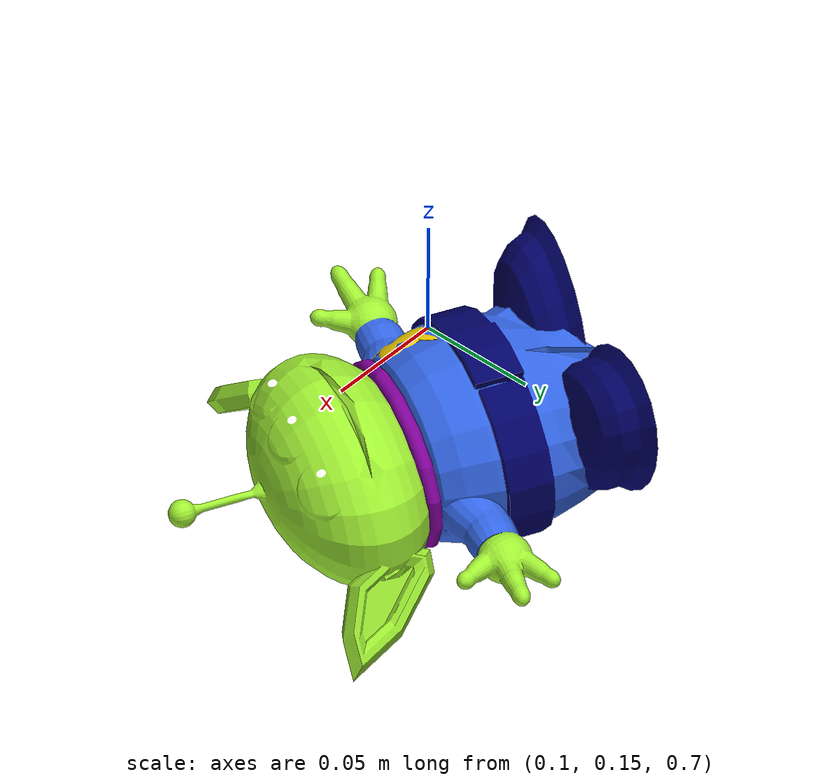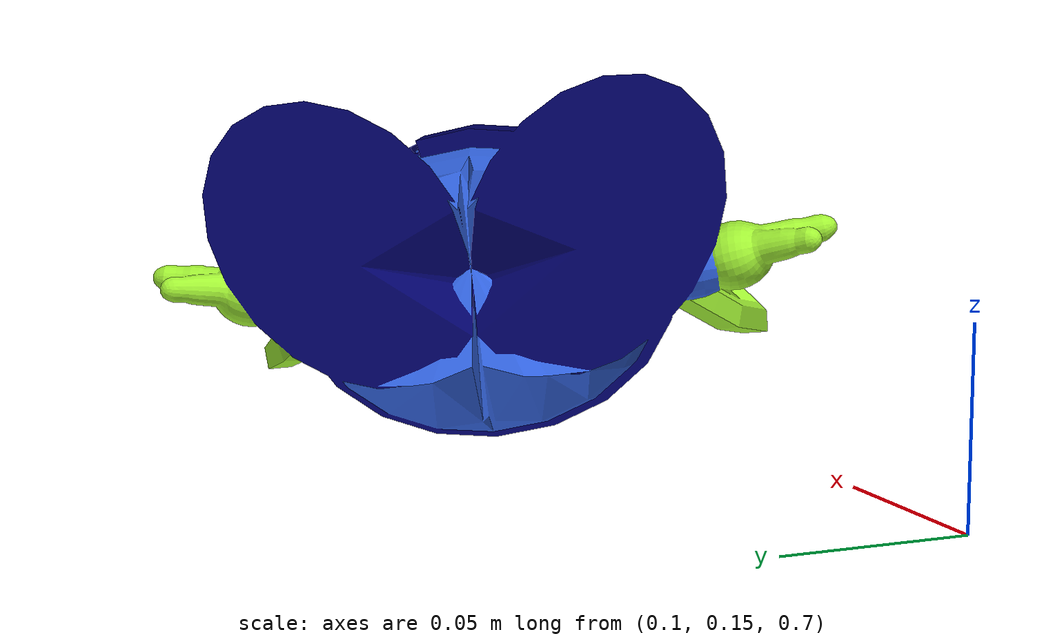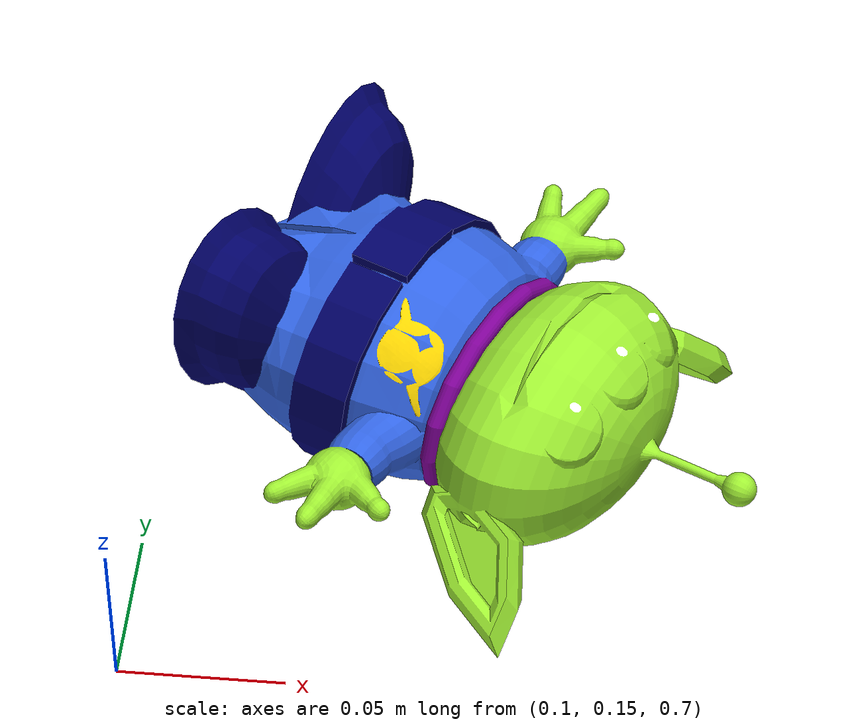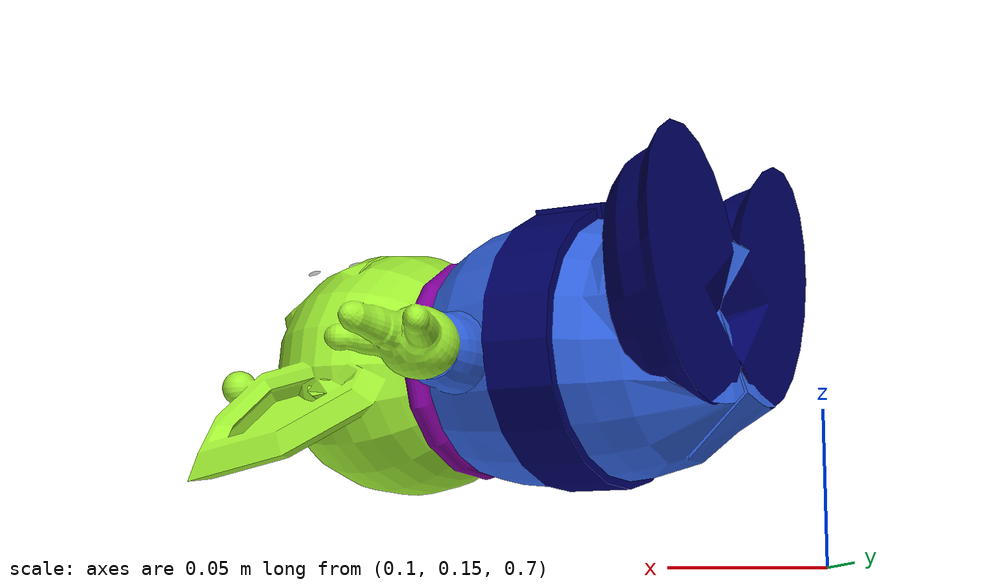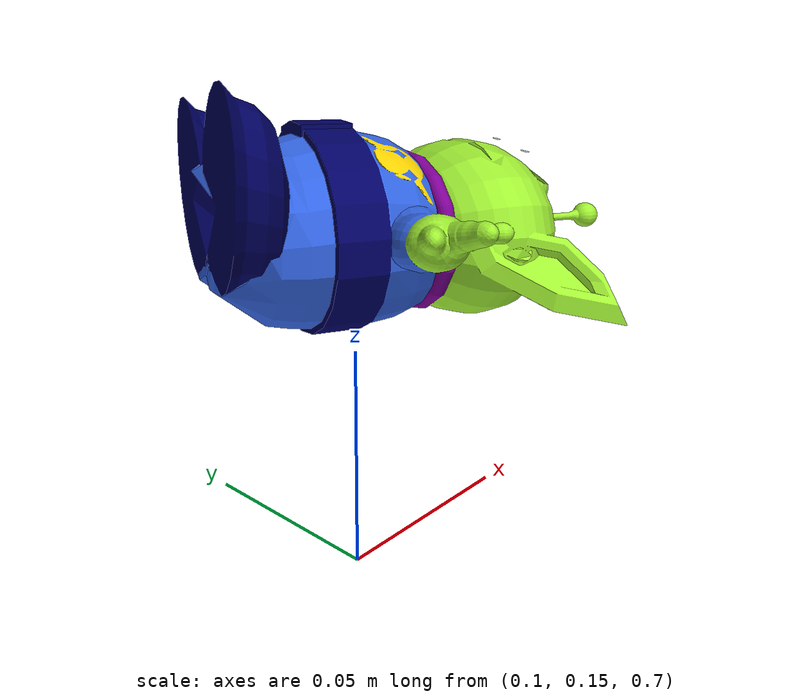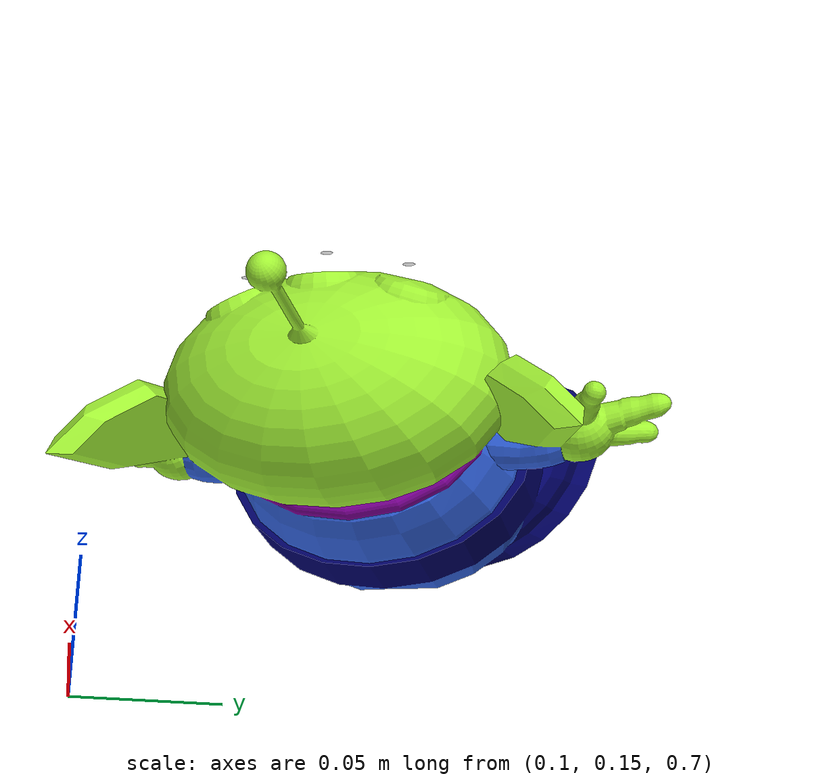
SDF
<?xml version='1.0'?>
<sdf version='1.6'>
  <model name='alien_model'>
    <pose>0.136858 0.259445 0.755916 0.000002 -0.087170 -2.013042</pose>
    <static>false</static>

    <link name='link'>
      <inertial>
        <pose>0 0.045 0.001 0 0 0</pose>
        <mass>0.03</mass>
        <inertia>
          <ixx>0.00055575</ixx>
          <ixy>0</ixy>
          <ixz>0</ixz>
          <iyy>0.00055575</iyy>
          <iyz>0</iyz>
          <izz>0.0001755</izz>
        </inertia>
      </inertial>

      <collision name='collision'>
        <pose>0 0 0 0 0 0</pose>
        <geometry>
          <mesh>
            <uri>/home/monica/ros2_pelota/src/xolobot_arm/models/meshes/alien.dae</uri>
            <scale>0.008 0.008 0.008</scale>
          </mesh>
        </geometry>
        <surface>
          <contact>
              <kp>1000</kp>
              <kd>100</kd>
              <min_depth>0.001</min_depth>
              <max_vel>0.1</max_vel>
          </contact>
          <friction>
            <ode>
              <mu>1.0</mu>
              <mu2>1.0</mu2>
            </ode>
          </friction>
        </surface>
        <max_contacts>10</max_contacts>
      </collision>

      <visual name='visual'>
        <pose>0 0 0 0 0 0</pose>
        <geometry>
          <mesh>
            <uri>/home/monica/ros2_pelota/src/xolobot_arm/models/meshes/alien.dae</uri>
            <scale>0.008 0.008 0.008</scale>
          </mesh>
        </geometry>
        <material>
          <transparency>0</transparency>
        </material>
      </visual>
      <self_collide>false</self_collide>
      <enable_wind>false</enable_wind>
      <kinematic>false</kinematic>
    </link>
  </model>
</sdf>
